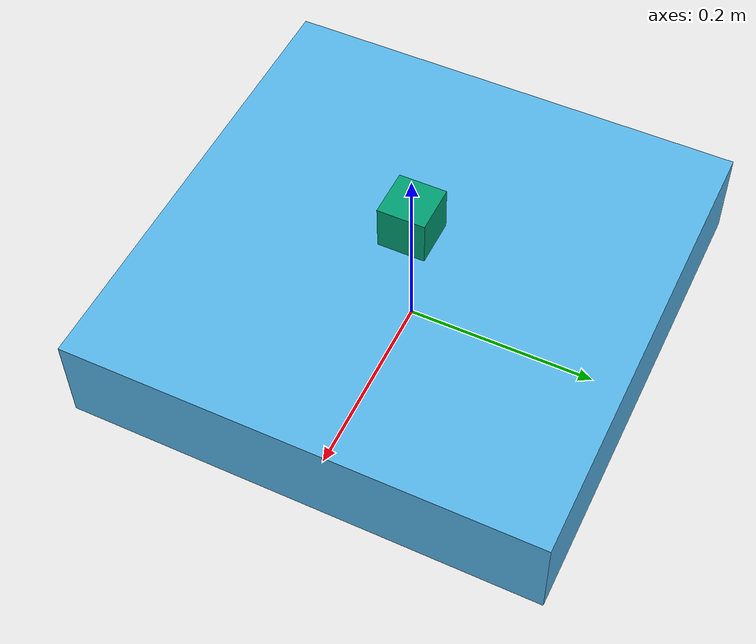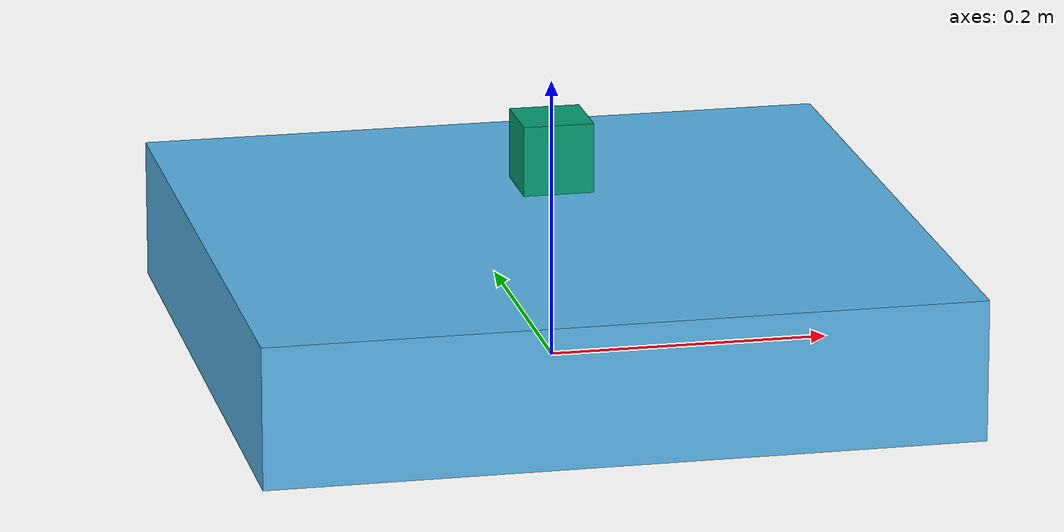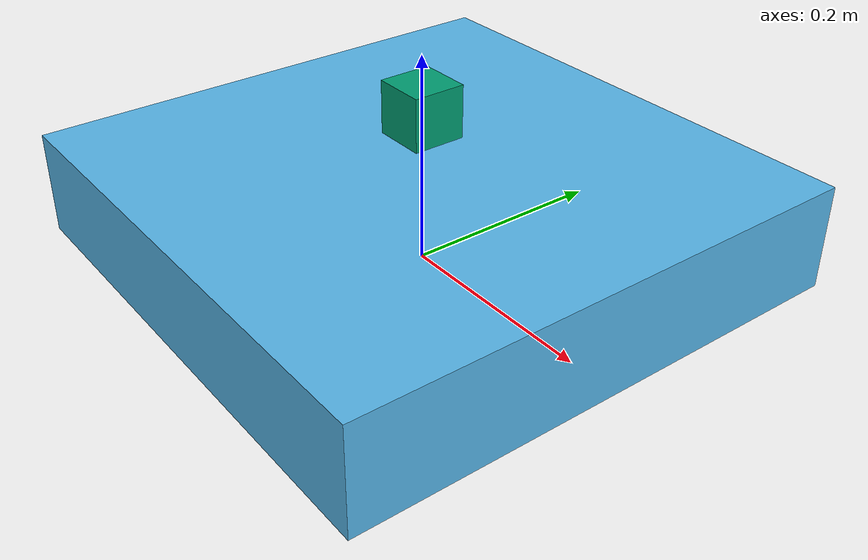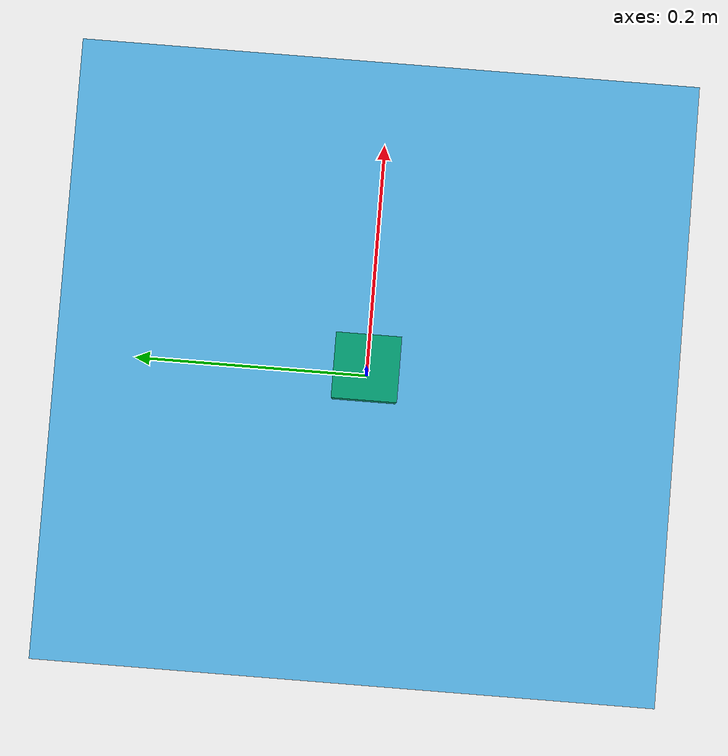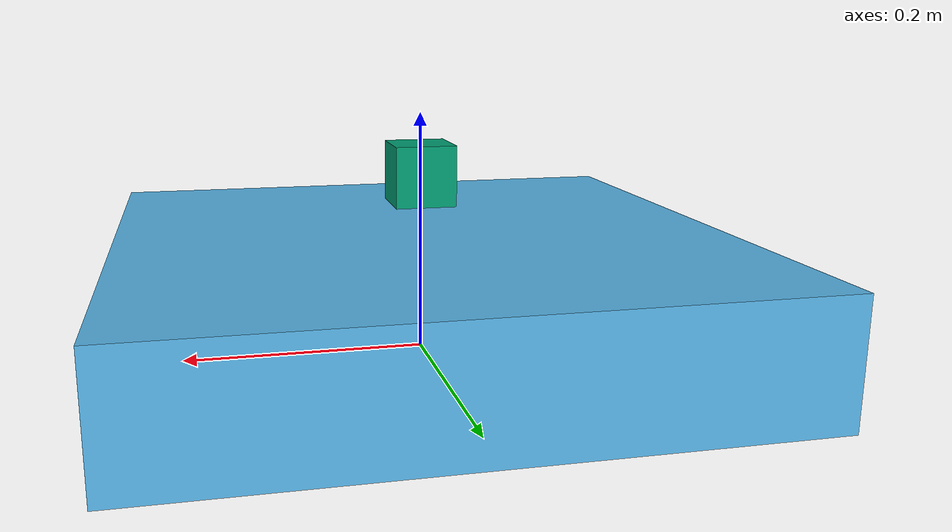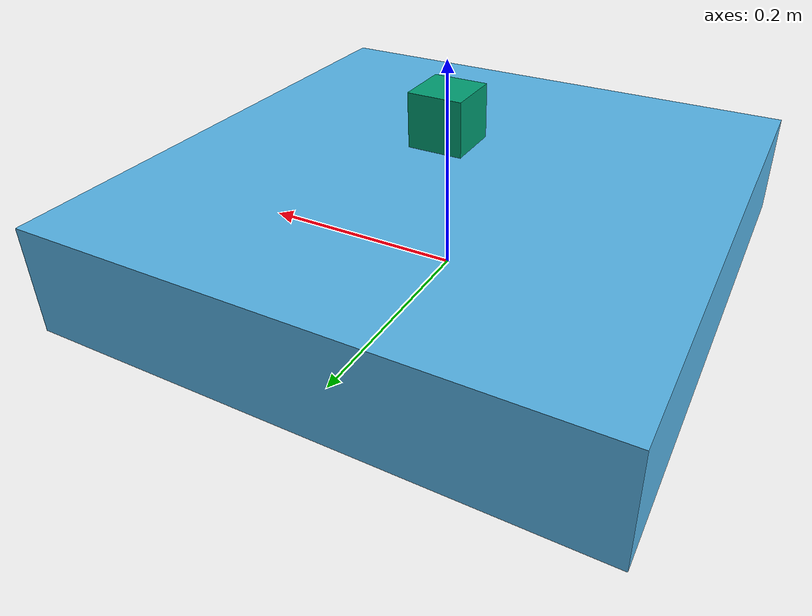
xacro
<?xml version="1.0"?>
<robot name="mbot" xmlns:xacro="http://wiki.ros.org/xacro">
  <!-- Base Footprint -->
  <link name="base_footprint"/>
  <joint name="footprint" type="fixed" >
   <parent link="base_footprint" />
    <child link="link_platform" />
    <origin xyz="0 0 0.05" rpy="0 0 0" />
  </joint>
  <link name="link_platform" >
    <visual>
      <geometry>
        <box size="0.5 0.5 0.1" />
      </geometry>
    </visual>
    <collision>
      <geometry>
        <box size="0.5 0.5 0.1" />
      </geometry>
    </collision>
    <inertial>
      <origin xyz="0 0 0"/>
      <mass value="0.01"/>
      <inertia ixx="0.001" ixy="0.0" ixz="0.0"
               iyy="0.001" iyz="0.0"
               izz="0.001" />
    </inertial>
  </link>

  <joint name="lidar_platform" type="fixed" >
    <parent link="link_platform" />
    <child link="lidar_link" />
    <origin xyz="0 0 0.1" rpy="0 0 0" />
  </joint>
  <xacro:include filename="$(find livox_laser_simulation)/models/sensors_only/mid360.xacro"/>

</robot>

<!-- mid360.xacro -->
<robot xmlns:xacro="http://www.ros.org/wiki/xacro">

  <xacro:property name="M_PI" value="3.14159"/>
  <xacro:property name="laser_min_range" value="0.1"/>
  <xacro:property name="laser_max_range" value="30.0"/>
  <xacro:property name="ros_topic" value="/livox/lidar"/>
  <xacro:property name="samples" value="20000"/>
  <xacro:property name="downsample" value="1"/>
  <xacro:property name="gazebo_lidar_visualize"  value="True"/>
  <xacro:property name="publish_pointcloud_type" value="0"/>

  <xacro:macro name="null_inertial">
    <inertial>
      <mass value="0.1"/>
    <inertia ixx="0.01" ixy="0" ixz="0"
          iyy="0.01" iyz="0"
          izz="0.01"/>
    </inertial>
  </xacro:macro>

  <!-- Lidar Link -->
  <xacro:macro name="lidar_link" params="">
    <link name="lidar_link">
      <xacro:null_inertial/>
      <collision name="lidar_collision">
        <geometry>
          <box size="0.05 0.05 0.05"/>
        </geometry>
      </collision>
      <visual name="lidar_visual">
        <geometry>
          <box size="0.05 0.05 0.05"/>
        </geometry>
      </visual>
    </link>
    <link name="livox">
      <xacro:null_inertial/>
    </link>

    <joint name="lidar_link_to" type="fixed">
      <parent link="lidar_link"/>
      <child link="livox"/>
      <origin rpy="0 0 0" xyz="0.0 0.0 0.2"/>
    </joint>

  </xacro:macro>

  <!-- Lidar Sensor -->
  <xacro:macro name="lidar_sensor" params="">
    <gazebo reference="livox">
        <sensor type="ray" name="laser_livox">
        <pose>0 0 0.0 0 0 0</pose>
        <visualize>True</visualize>
        <always_on>True</always_on>
        <update_rate>10</update_rate>
        <plugin name="gazebo_ros_laser_controller" filename="liblivox_laser_simulation.so">
            <ray>
            <scan>
                <horizontal>
                <samples>100</samples>
                <resolution>1</resolution>
                <min_angle>${-1*M_PI}</min_angle>
                <max_angle>${1*M_PI}</max_angle>
                </horizontal>
                <vertical>
                <samples>50</samples>
                <resolution>1</resolution>
                <min_angle>${-1*M_PI}</min_angle>
                <max_angle>${1*M_PI}</max_angle>
                </vertical>
            </scan>
            <range>
                <min>${laser_min_range}</min>
                <max>${laser_max_range}</max>
                <resolution>1</resolution>
            </range>
            <noise>
                <type>gaussian</type>
                <mean>0.0</mean>
                <stddev>0.0</stddev>
            </noise>
            </ray>
            <visualize>${gazebo_lidar_visualize}</visualize>
            <samples>${samples}</samples>
            <downsample>${downsample}</downsample>
            <csv_file_name>mid360-real-centr.csv</csv_file_name>
            <publish_pointcloud_type>${publish_pointcloud_type}</publish_pointcloud_type>
            <ros_topic>${ros_topic}</ros_topic>
        </plugin>
        </sensor>
    </gazebo>
  </xacro:macro>

  <!-- Instantiate Lidar -->
  <xacro:lidar_link />
  <xacro:lidar_sensor />
</robot>
